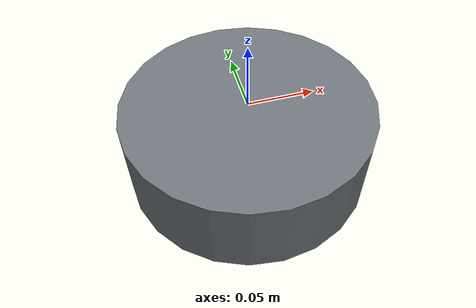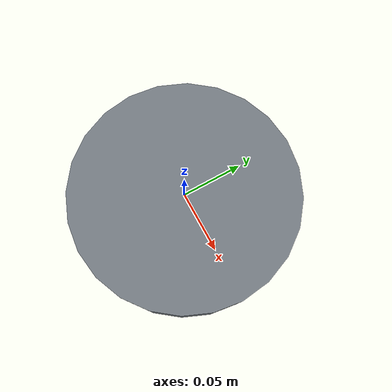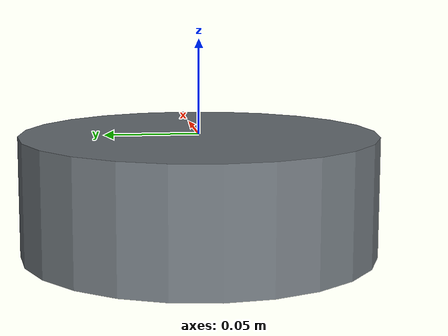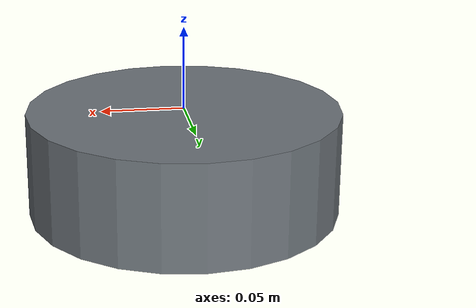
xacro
<?xml version="1.0"?>
<robot xmlns:xacro="http://wiki.ros.org/xacro" name="han">

  <xacro:include filename="$(find netft_utils)/urdf/ros2_control.xacro"/>

  <!-- Make a simple cylinder for the sensor -->
  <xacro:property name="ati_dia" value="0.19" />
  <xacro:property name="ati_height" value="0.064" />
  <link name="ati_omega_191" >
    <visual>
      <origin xyz="0 0 ${-0.5*ati_height}" rpy="0 0 0" />
      <geometry>
        <cylinder radius="${0.5*ati_dia}" length="${ati_height}" />
      </geometry>
      <material name="Gray(ish)">
        <color rgba="0.427 0.455 0.478 1.0"/>
      </material>
    </visual>

    <collision>
      <origin xyz="0 0 ${-0.5*ati_height}" rpy="0 0 0" />
      <geometry>
        <cylinder radius="${0.5*ati_dia}" length="${ati_height}" />
      </geometry>
    </collision>
  </link>

  <!-- Add ros2_control information -->
  <xacro:netft_sensor_ros2_control name="netft_sensor" ip_address="192.168.137.170"/>

</robot>
